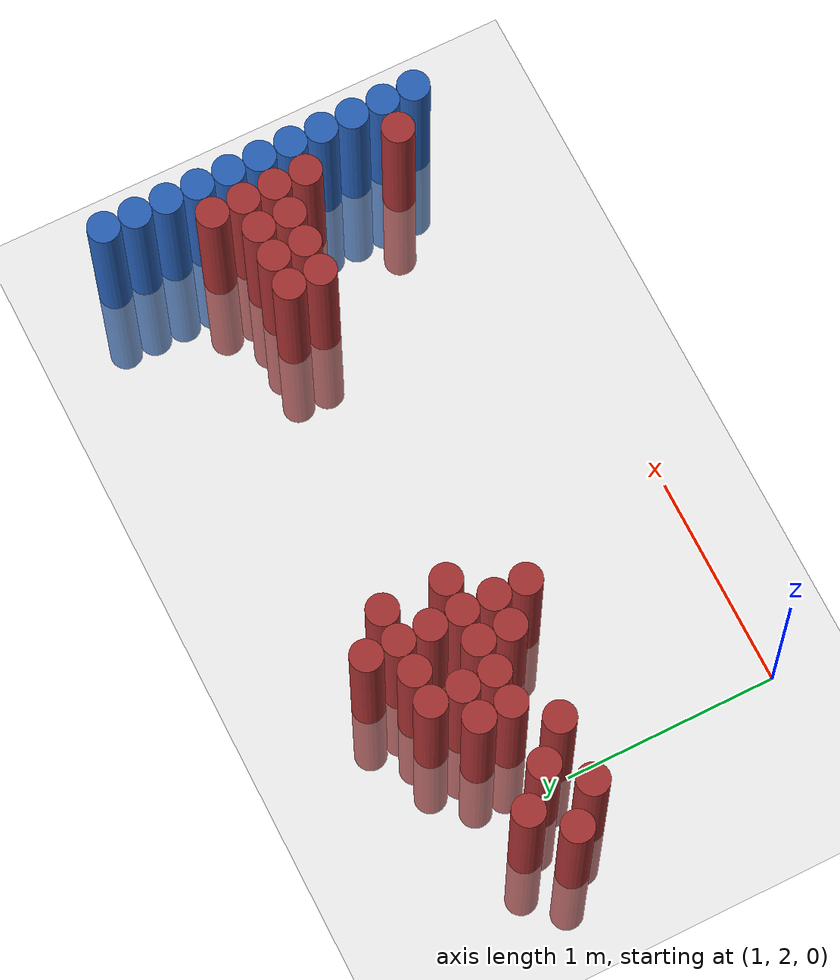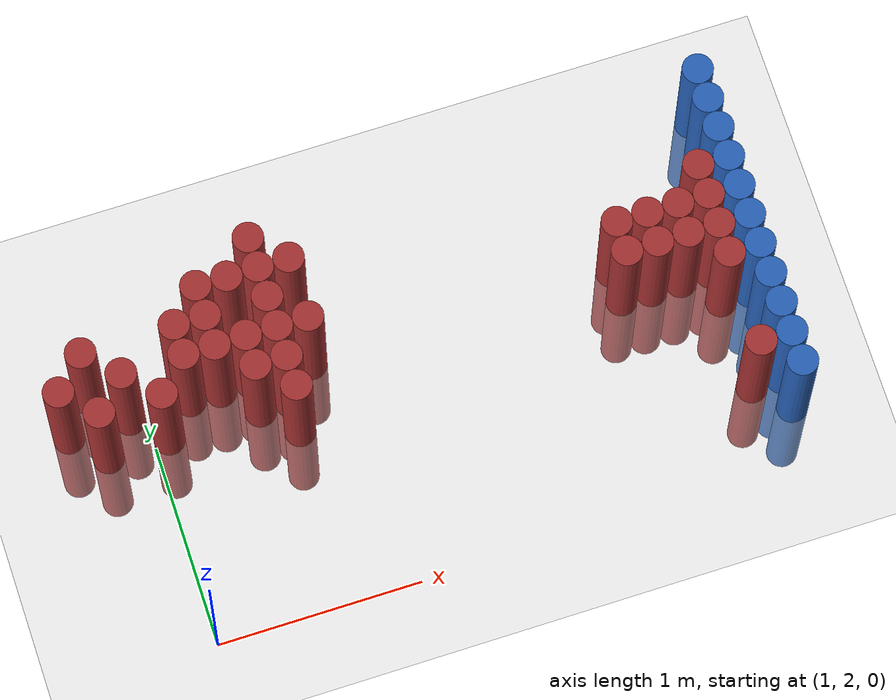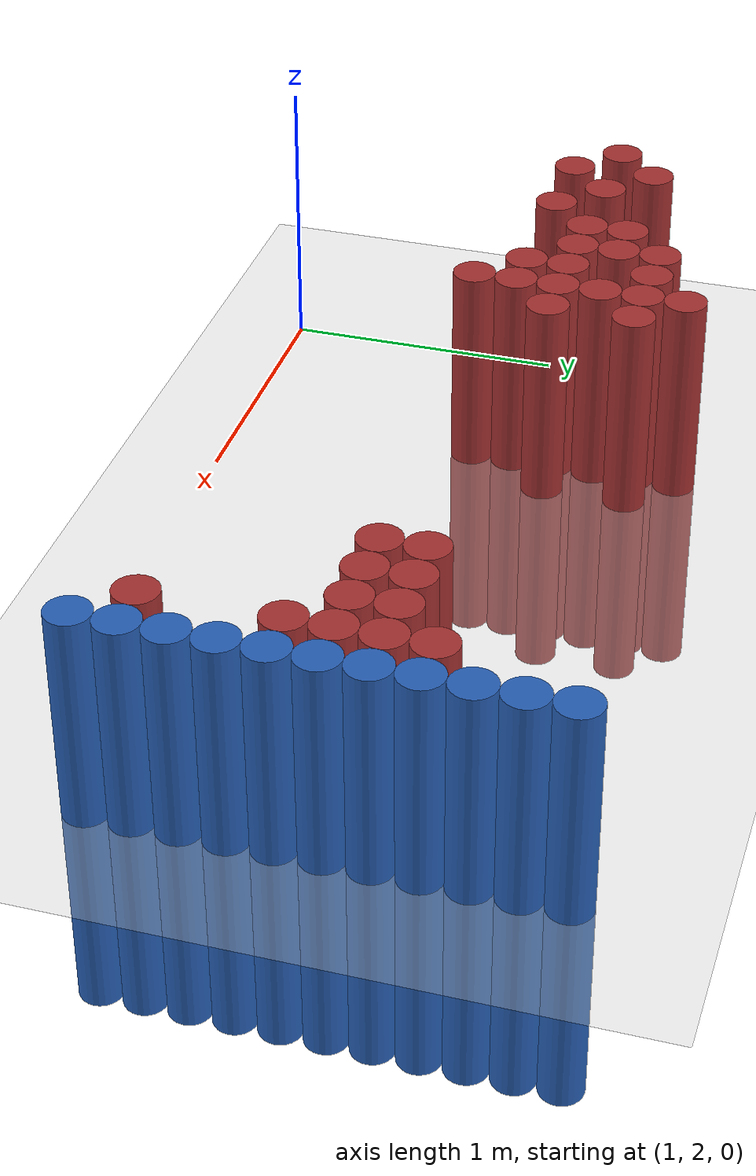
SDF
<sdf version="1.6">
 <world name="default">
  <model name="ground_plane">
   <static>1</static>
   <link name="link">
    <collision name="collision">
     <geometry><plane><normal>0 0 1</normal><size>100 100</size></plane></geometry>
     <surface><friction><ode><mu>100</mu><mu2>50</mu2></ode></friction></surface>
    </collision>
    <visual name="visual">
     <cast_shadows>0</cast_shadows>
     <geometry><plane><normal>0 0 1</normal><size>100 100</size></plane></geometry>
     <material>
      <script><uri>file://media/materials/scripts/gazebo.material</uri><name>Gazebo/Grey</name></script>
     </material>
    </visual>
   </link>
  </model>
  <model name="unit_cylinder_146">
   <static>1</static>
   <pose>3.925000 2.425000 0.000000 0.000000 0.000000 0.000000</pose>
   <link name="link">
    <inertial>
     <mass>1</mass>
     <inertia><ixx>0.145833</ixx><ixy>0</ixy><ixz>0</ixz><iyy>0.145833</iyy><iyz>0</iyz><izz>0.125</izz></inertia>
    </inertial>
    <collision name="collision">
     <geometry><cylinder><radius>0.075000</radius><length>1.5</length></cylinder></geometry>
    </collision>
    <visual name="visual">
     <geometry><cylinder><radius>0.075000</radius><length>1.5</length></cylinder></geometry>
     <material>
      <ambient>0.152000 0.379000 0.720000 1</ambient>
      <diffuse>0.152000 0.379000 0.720000 1</diffuse>
     </material>
     <material>
      <script><name>Gazebo/Grey</name><uri>file://media/materials/scripts/gazebo.material</uri></script>
     </material>
    </visual>
   </link>
  </model>
  <model name="unit_cylinder_148">
   <static>1</static>
   <pose>3.925000 2.575000 0.000000 0.000000 0.000000 0.000000</pose>
   <link name="link">
    <inertial>
     <mass>1</mass>
     <inertia><ixx>0.145833</ixx><ixy>0</ixy><ixz>0</ixz><iyy>0.145833</iyy><iyz>0</iyz><izz>0.125</izz></inertia>
    </inertial>
    <collision name="collision">
     <geometry><cylinder><radius>0.075000</radius><length>1.5</length></cylinder></geometry>
    </collision>
    <visual name="visual">
     <geometry><cylinder><radius>0.075000</radius><length>1.5</length></cylinder></geometry>
     <material>
      <ambient>0.152000 0.379000 0.720000 1</ambient>
      <diffuse>0.152000 0.379000 0.720000 1</diffuse>
     </material>
     <material>
      <script><name>Gazebo/Grey</name><uri>file://media/materials/scripts/gazebo.material</uri></script>
     </material>
    </visual>
   </link>
  </model>
  <model name="unit_cylinder_150">
   <static>1</static>
   <pose>3.925000 2.725000 0.000000 0.000000 0.000000 0.000000</pose>
   <link name="link">
    <inertial>
     <mass>1</mass>
     <inertia><ixx>0.145833</ixx><ixy>0</ixy><ixz>0</ixz><iyy>0.145833</iyy><iyz>0</iyz><izz>0.125</izz></inertia>
    </inertial>
    <collision name="collision">
     <geometry><cylinder><radius>0.075000</radius><length>1.5</length></cylinder></geometry>
    </collision>
    <visual name="visual">
     <geometry><cylinder><radius>0.075000</radius><length>1.5</length></cylinder></geometry>
     <material>
      <ambient>0.152000 0.379000 0.720000 1</ambient>
      <diffuse>0.152000 0.379000 0.720000 1</diffuse>
     </material>
     <material>
      <script><name>Gazebo/Grey</name><uri>file://media/materials/scripts/gazebo.material</uri></script>
     </material>
    </visual>
   </link>
  </model>
  <model name="unit_cylinder_152">
   <static>1</static>
   <pose>3.925000 2.875000 0.000000 0.000000 0.000000 0.000000</pose>
   <link name="link">
    <inertial>
     <mass>1</mass>
     <inertia><ixx>0.145833</ixx><ixy>0</ixy><ixz>0</ixz><iyy>0.145833</iyy><iyz>0</iyz><izz>0.125</izz></inertia>
    </inertial>
    <collision name="collision">
     <geometry><cylinder><radius>0.075000</radius><length>1.5</length></cylinder></geometry>
    </collision>
    <visual name="visual">
     <geometry><cylinder><radius>0.075000</radius><length>1.5</length></cylinder></geometry>
     <material>
      <ambient>0.152000 0.379000 0.720000 1</ambient>
      <diffuse>0.152000 0.379000 0.720000 1</diffuse>
     </material>
     <material>
      <script><name>Gazebo/Grey</name><uri>file://media/materials/scripts/gazebo.material</uri></script>
     </material>
    </visual>
   </link>
  </model>
  <model name="unit_cylinder_154">
   <static>1</static>
   <pose>3.925000 3.025000 0.000000 0.000000 0.000000 0.000000</pose>
   <link name="link">
    <inertial>
     <mass>1</mass>
     <inertia><ixx>0.145833</ixx><ixy>0</ixy><ixz>0</ixz><iyy>0.145833</iyy><iyz>0</iyz><izz>0.125</izz></inertia>
    </inertial>
    <collision name="collision">
     <geometry><cylinder><radius>0.075000</radius><length>1.5</length></cylinder></geometry>
    </collision>
    <visual name="visual">
     <geometry><cylinder><radius>0.075000</radius><length>1.5</length></cylinder></geometry>
     <material>
      <ambient>0.152000 0.379000 0.720000 1</ambient>
      <diffuse>0.152000 0.379000 0.720000 1</diffuse>
     </material>
     <material>
      <script><name>Gazebo/Grey</name><uri>file://media/materials/scripts/gazebo.material</uri></script>
     </material>
    </visual>
   </link>
  </model>
  <model name="unit_cylinder_156">
   <static>1</static>
   <pose>3.925000 3.175000 0.000000 0.000000 0.000000 0.000000</pose>
   <link name="link">
    <inertial>
     <mass>1</mass>
     <inertia><ixx>0.145833</ixx><ixy>0</ixy><ixz>0</ixz><iyy>0.145833</iyy><iyz>0</iyz><izz>0.125</izz></inertia>
    </inertial>
    <collision name="collision">
     <geometry><cylinder><radius>0.075000</radius><length>1.5</length></cylinder></geometry>
    </collision>
    <visual name="visual">
     <geometry><cylinder><radius>0.075000</radius><length>1.5</length></cylinder></geometry>
     <material>
      <ambient>0.152000 0.379000 0.720000 1</ambient>
      <diffuse>0.152000 0.379000 0.720000 1</diffuse>
     </material>
     <material>
      <script><name>Gazebo/Grey</name><uri>file://media/materials/scripts/gazebo.material</uri></script>
     </material>
    </visual>
   </link>
  </model>
  <model name="unit_cylinder_158">
   <static>1</static>
   <pose>3.925000 3.325000 0.000000 0.000000 0.000000 0.000000</pose>
   <link name="link">
    <inertial>
     <mass>1</mass>
     <inertia><ixx>0.145833</ixx><ixy>0</ixy><ixz>0</ixz><iyy>0.145833</iyy><iyz>0</iyz><izz>0.125</izz></inertia>
    </inertial>
    <collision name="collision">
     <geometry><cylinder><radius>0.075000</radius><length>1.5</length></cylinder></geometry>
    </collision>
    <visual name="visual">
     <geometry><cylinder><radius>0.075000</radius><length>1.5</length></cylinder></geometry>
     <material>
      <ambient>0.152000 0.379000 0.720000 1</ambient>
      <diffuse>0.152000 0.379000 0.720000 1</diffuse>
     </material>
     <material>
      <script><name>Gazebo/Grey</name><uri>file://media/materials/scripts/gazebo.material</uri></script>
     </material>
    </visual>
   </link>
  </model>
  <model name="unit_cylinder_160">
   <static>1</static>
   <pose>3.925000 3.475000 0.000000 0.000000 0.000000 0.000000</pose>
   <link name="link">
    <inertial>
     <mass>1</mass>
     <inertia><ixx>0.145833</ixx><ixy>0</ixy><ixz>0</ixz><iyy>0.145833</iyy><iyz>0</iyz><izz>0.125</izz></inertia>
    </inertial>
    <collision name="collision">
     <geometry><cylinder><radius>0.075000</radius><length>1.5</length></cylinder></geometry>
    </collision>
    <visual name="visual">
     <geometry><cylinder><radius>0.075000</radius><length>1.5</length></cylinder></geometry>
     <material>
      <ambient>0.152000 0.379000 0.720000 1</ambient>
      <diffuse>0.152000 0.379000 0.720000 1</diffuse>
     </material>
     <material>
      <script><name>Gazebo/Grey</name><uri>file://media/materials/scripts/gazebo.material</uri></script>
     </material>
    </visual>
   </link>
  </model>
  <model name="unit_cylinder_162">
   <static>1</static>
   <pose>3.925000 3.625000 0.000000 0.000000 0.000000 0.000000</pose>
   <link name="link">
    <inertial>
     <mass>1</mass>
     <inertia><ixx>0.145833</ixx><ixy>0</ixy><ixz>0</ixz><iyy>0.145833</iyy><iyz>0</iyz><izz>0.125</izz></inertia>
    </inertial>
    <collision name="collision">
     <geometry><cylinder><radius>0.075000</radius><length>1.5</length></cylinder></geometry>
    </collision>
    <visual name="visual">
     <geometry><cylinder><radius>0.075000</radius><length>1.5</length></cylinder></geometry>
     <material>
      <ambient>0.152000 0.379000 0.720000 1</ambient>
      <diffuse>0.152000 0.379000 0.720000 1</diffuse>
     </material>
     <material>
      <script><name>Gazebo/Grey</name><uri>file://media/materials/scripts/gazebo.material</uri></script>
     </material>
    </visual>
   </link>
  </model>
  <model name="unit_cylinder_164">
   <static>1</static>
   <pose>3.925000 3.775000 0.000000 0.000000 0.000000 0.000000</pose>
   <link name="link">
    <inertial>
     <mass>1</mass>
     <inertia><ixx>0.145833</ixx><ixy>0</ixy><ixz>0</ixz><iyy>0.145833</iyy><iyz>0</iyz><izz>0.125</izz></inertia>
    </inertial>
    <collision name="collision">
     <geometry><cylinder><radius>0.075000</radius><length>1.5</length></cylinder></geometry>
    </collision>
    <visual name="visual">
     <geometry><cylinder><radius>0.075000</radius><length>1.5</length></cylinder></geometry>
     <material>
      <ambient>0.152000 0.379000 0.720000 1</ambient>
      <diffuse>0.152000 0.379000 0.720000 1</diffuse>
     </material>
     <material>
      <script><name>Gazebo/Grey</name><uri>file://media/materials/scripts/gazebo.material</uri></script>
     </material>
    </visual>
   </link>
  </model>
  <model name="unit_cylinder_350">
   <static>1</static>
   <pose>0.625000 3.175000 0.000000 0.000000 0.000000 0.000000</pose>
   <link name="link">
    <inertial>
     <mass>1</mass>
     <inertia><ixx>0.145833</ixx><ixy>0</ixy><ixz>0</ixz><iyy>0.145833</iyy><iyz>0</iyz><izz>0.125</izz></inertia>
    </inertial>
    <collision name="collision">
     <geometry><cylinder><radius>0.075000</radius><length>1.5</length></cylinder></geometry>
    </collision>
    <visual name="visual">
     <geometry><cylinder><radius>0.075000</radius><length>1.5</length></cylinder></geometry>
     <material>
      <ambient>0.648000 0.192000 0.192000 1</ambient>
      <diffuse>0.648000 0.192000 0.192000 1</diffuse>
     </material>
     <material>
      <script><name>Gazebo/Grey</name><uri>file://media/materials/scripts/gazebo.material</uri></script>
     </material>
    </visual>
   </link>
  </model>
  <model name="unit_cylinder_353">
   <static>1</static>
   <pose>0.775000 3.025000 0.000000 0.000000 0.000000 0.000000</pose>
   <link name="link">
    <inertial>
     <mass>1</mass>
     <inertia><ixx>0.145833</ixx><ixy>0</ixy><ixz>0</ixz><iyy>0.145833</iyy><iyz>0</iyz><izz>0.125</izz></inertia>
    </inertial>
    <collision name="collision">
     <geometry><cylinder><radius>0.075000</radius><length>1.5</length></cylinder></geometry>
    </collision>
    <visual name="visual">
     <geometry><cylinder><radius>0.075000</radius><length>1.5</length></cylinder></geometry>
     <material>
      <ambient>0.648000 0.192000 0.192000 1</ambient>
      <diffuse>0.648000 0.192000 0.192000 1</diffuse>
     </material>
     <material>
      <script><name>Gazebo/Grey</name><uri>file://media/materials/scripts/gazebo.material</uri></script>
     </material>
    </visual>
   </link>
  </model>
  <model name="unit_cylinder_354">
   <static>1</static>
   <pose>0.775000 3.325000 0.000000 0.000000 0.000000 0.000000</pose>
   <link name="link">
    <inertial>
     <mass>1</mass>
     <inertia><ixx>0.145833</ixx><ixy>0</ixy><ixz>0</ixz><iyy>0.145833</iyy><iyz>0</iyz><izz>0.125</izz></inertia>
    </inertial>
    <collision name="collision">
     <geometry><cylinder><radius>0.075000</radius><length>1.5</length></cylinder></geometry>
    </collision>
    <visual name="visual">
     <geometry><cylinder><radius>0.075000</radius><length>1.5</length></cylinder></geometry>
     <material>
      <ambient>0.648000 0.192000 0.192000 1</ambient>
      <diffuse>0.648000 0.192000 0.192000 1</diffuse>
     </material>
     <material>
      <script><name>Gazebo/Grey</name><uri>file://media/materials/scripts/gazebo.material</uri></script>
     </material>
    </visual>
   </link>
  </model>
  <model name="unit_cylinder_360">
   <static>1</static>
   <pose>0.925000 3.175000 0.000000 0.000000 0.000000 0.000000</pose>
   <link name="link">
    <inertial>
     <mass>1</mass>
     <inertia><ixx>0.145833</ixx><ixy>0</ixy><ixz>0</ixz><iyy>0.145833</iyy><iyz>0</iyz><izz>0.125</izz></inertia>
    </inertial>
    <collision name="collision">
     <geometry><cylinder><radius>0.075000</radius><length>1.5</length></cylinder></geometry>
    </collision>
    <visual name="visual">
     <geometry><cylinder><radius>0.075000</radius><length>1.5</length></cylinder></geometry>
     <material>
      <ambient>0.648000 0.192000 0.192000 1</ambient>
      <diffuse>0.648000 0.192000 0.192000 1</diffuse>
     </material>
     <material>
      <script><name>Gazebo/Grey</name><uri>file://media/materials/scripts/gazebo.material</uri></script>
     </material>
    </visual>
   </link>
  </model>
  <model name="unit_cylinder_367">
   <static>1</static>
   <pose>1.075000 3.025000 0.000000 0.000000 0.000000 0.000000</pose>
   <link name="link">
    <inertial>
     <mass>1</mass>
     <inertia><ixx>0.145833</ixx><ixy>0</ixy><ixz>0</ixz><iyy>0.145833</iyy><iyz>0</iyz><izz>0.125</izz></inertia>
    </inertial>
    <collision name="collision">
     <geometry><cylinder><radius>0.075000</radius><length>1.5</length></cylinder></geometry>
    </collision>
    <visual name="visual">
     <geometry><cylinder><radius>0.075000</radius><length>1.5</length></cylinder></geometry>
     <material>
      <ambient>0.648000 0.192000 0.192000 1</ambient>
      <diffuse>0.648000 0.192000 0.192000 1</diffuse>
     </material>
     <material>
      <script><name>Gazebo/Grey</name><uri>file://media/materials/scripts/gazebo.material</uri></script>
     </material>
    </visual>
   </link>
  </model>
  <model name="unit_cylinder_371">
   <static>1</static>
   <pose>1.225000 3.175000 0.000000 0.000000 0.000000 0.000000</pose>
   <link name="link">
    <inertial>
     <mass>1</mass>
     <inertia><ixx>0.145833</ixx><ixy>0</ixy><ixz>0</ixz><iyy>0.145833</iyy><iyz>0</iyz><izz>0.125</izz></inertia>
    </inertial>
    <collision name="collision">
     <geometry><cylinder><radius>0.075000</radius><length>1.5</length></cylinder></geometry>
    </collision>
    <visual name="visual">
     <geometry><cylinder><radius>0.075000</radius><length>1.5</length></cylinder></geometry>
     <material>
      <ambient>0.648000 0.192000 0.192000 1</ambient>
      <diffuse>0.648000 0.192000 0.192000 1</diffuse>
     </material>
     <material>
      <script><name>Gazebo/Grey</name><uri>file://media/materials/scripts/gazebo.material</uri></script>
     </material>
    </visual>
   </link>
  </model>
  <model name="unit_cylinder_372">
   <static>1</static>
   <pose>1.225000 3.325000 0.000000 0.000000 0.000000 0.000000</pose>
   <link name="link">
    <inertial>
     <mass>1</mass>
     <inertia><ixx>0.145833</ixx><ixy>0</ixy><ixz>0</ixz><iyy>0.145833</iyy><iyz>0</iyz><izz>0.125</izz></inertia>
    </inertial>
    <collision name="collision">
     <geometry><cylinder><radius>0.075000</radius><length>1.5</length></cylinder></geometry>
    </collision>
    <visual name="visual">
     <geometry><cylinder><radius>0.075000</radius><length>1.5</length></cylinder></geometry>
     <material>
      <ambient>0.648000 0.192000 0.192000 1</ambient>
      <diffuse>0.648000 0.192000 0.192000 1</diffuse>
     </material>
     <material>
      <script><name>Gazebo/Grey</name><uri>file://media/materials/scripts/gazebo.material</uri></script>
     </material>
    </visual>
   </link>
  </model>
  <model name="unit_cylinder_377">
   <static>1</static>
   <pose>1.375000 3.175000 0.000000 0.000000 0.000000 0.000000</pose>
   <link name="link">
    <inertial>
     <mass>1</mass>
     <inertia><ixx>0.145833</ixx><ixy>0</ixy><ixz>0</ixz><iyy>0.145833</iyy><iyz>0</iyz><izz>0.125</izz></inertia>
    </inertial>
    <collision name="collision">
     <geometry><cylinder><radius>0.075000</radius><length>1.5</length></cylinder></geometry>
    </collision>
    <visual name="visual">
     <geometry><cylinder><radius>0.075000</radius><length>1.5</length></cylinder></geometry>
     <material>
      <ambient>0.648000 0.192000 0.192000 1</ambient>
      <diffuse>0.648000 0.192000 0.192000 1</diffuse>
     </material>
     <material>
      <script><name>Gazebo/Grey</name><uri>file://media/materials/scripts/gazebo.material</uri></script>
     </material>
    </visual>
   </link>
  </model>
  <model name="unit_cylinder_378">
   <static>1</static>
   <pose>1.375000 3.325000 0.000000 0.000000 0.000000 0.000000</pose>
   <link name="link">
    <inertial>
     <mass>1</mass>
     <inertia><ixx>0.145833</ixx><ixy>0</ixy><ixz>0</ixz><iyy>0.145833</iyy><iyz>0</iyz><izz>0.125</izz></inertia>
    </inertial>
    <collision name="collision">
     <geometry><cylinder><radius>0.075000</radius><length>1.5</length></cylinder></geometry>
    </collision>
    <visual name="visual">
     <geometry><cylinder><radius>0.075000</radius><length>1.5</length></cylinder></geometry>
     <material>
      <ambient>0.648000 0.192000 0.192000 1</ambient>
      <diffuse>0.648000 0.192000 0.192000 1</diffuse>
     </material>
     <material>
      <script><name>Gazebo/Grey</name><uri>file://media/materials/scripts/gazebo.material</uri></script>
     </material>
    </visual>
   </link>
  </model>
  <model name="unit_cylinder_379">
   <static>1</static>
   <pose>1.375000 3.475000 0.000000 0.000000 0.000000 0.000000</pose>
   <link name="link">
    <inertial>
     <mass>1</mass>
     <inertia><ixx>0.145833</ixx><ixy>0</ixy><ixz>0</ixz><iyy>0.145833</iyy><iyz>0</iyz><izz>0.125</izz></inertia>
    </inertial>
    <collision name="collision">
     <geometry><cylinder><radius>0.075000</radius><length>1.5</length></cylinder></geometry>
    </collision>
    <visual name="visual">
     <geometry><cylinder><radius>0.075000</radius><length>1.5</length></cylinder></geometry>
     <material>
      <ambient>0.648000 0.192000 0.192000 1</ambient>
      <diffuse>0.648000 0.192000 0.192000 1</diffuse>
     </material>
     <material>
      <script><name>Gazebo/Grey</name><uri>file://media/materials/scripts/gazebo.material</uri></script>
     </material>
    </visual>
   </link>
  </model>
  <model name="unit_cylinder_384">
   <static>1</static>
   <pose>1.525000 3.025000 0.000000 0.000000 0.000000 0.000000</pose>
   <link name="link">
    <inertial>
     <mass>1</mass>
     <inertia><ixx>0.145833</ixx><ixy>0</ixy><ixz>0</ixz><iyy>0.145833</iyy><iyz>0</iyz><izz>0.125</izz></inertia>
    </inertial>
    <collision name="collision">
     <geometry><cylinder><radius>0.075000</radius><length>1.5</length></cylinder></geometry>
    </collision>
    <visual name="visual">
     <geometry><cylinder><radius>0.075000</radius><length>1.5</length></cylinder></geometry>
     <material>
      <ambient>0.648000 0.192000 0.192000 1</ambient>
      <diffuse>0.648000 0.192000 0.192000 1</diffuse>
     </material>
     <material>
      <script><name>Gazebo/Grey</name><uri>file://media/materials/scripts/gazebo.material</uri></script>
     </material>
    </visual>
   </link>
  </model>
  <model name="unit_cylinder_385">
   <static>1</static>
   <pose>1.525000 3.175000 0.000000 0.000000 0.000000 0.000000</pose>
   <link name="link">
    <inertial>
     <mass>1</mass>
     <inertia><ixx>0.145833</ixx><ixy>0</ixy><ixz>0</ixz><iyy>0.145833</iyy><iyz>0</iyz><izz>0.125</izz></inertia>
    </inertial>
    <collision name="collision">
     <geometry><cylinder><radius>0.075000</radius><length>1.5</length></cylinder></geometry>
    </collision>
    <visual name="visual">
     <geometry><cylinder><radius>0.075000</radius><length>1.5</length></cylinder></geometry>
     <material>
      <ambient>0.648000 0.192000 0.192000 1</ambient>
      <diffuse>0.648000 0.192000 0.192000 1</diffuse>
     </material>
     <material>
      <script><name>Gazebo/Grey</name><uri>file://media/materials/scripts/gazebo.material</uri></script>
     </material>
    </visual>
   </link>
  </model>
  <model name="unit_cylinder_386">
   <static>1</static>
   <pose>1.525000 3.475000 0.000000 0.000000 0.000000 0.000000</pose>
   <link name="link">
    <inertial>
     <mass>1</mass>
     <inertia><ixx>0.145833</ixx><ixy>0</ixy><ixz>0</ixz><iyy>0.145833</iyy><iyz>0</iyz><izz>0.125</izz></inertia>
    </inertial>
    <collision name="collision">
     <geometry><cylinder><radius>0.075000</radius><length>1.5</length></cylinder></geometry>
    </collision>
    <visual name="visual">
     <geometry><cylinder><radius>0.075000</radius><length>1.5</length></cylinder></geometry>
     <material>
      <ambient>0.648000 0.192000 0.192000 1</ambient>
      <diffuse>0.648000 0.192000 0.192000 1</diffuse>
     </material>
     <material>
      <script><name>Gazebo/Grey</name><uri>file://media/materials/scripts/gazebo.material</uri></script>
     </material>
    </visual>
   </link>
  </model>
  <model name="unit_cylinder_391">
   <static>1</static>
   <pose>1.675000 2.875000 0.000000 0.000000 0.000000 0.000000</pose>
   <link name="link">
    <inertial>
     <mass>1</mass>
     <inertia><ixx>0.145833</ixx><ixy>0</ixy><ixz>0</ixz><iyy>0.145833</iyy><iyz>0</iyz><izz>0.125</izz></inertia>
    </inertial>
    <collision name="collision">
     <geometry><cylinder><radius>0.075000</radius><length>1.5</length></cylinder></geometry>
    </collision>
    <visual name="visual">
     <geometry><cylinder><radius>0.075000</radius><length>1.5</length></cylinder></geometry>
     <material>
      <ambient>0.648000 0.192000 0.192000 1</ambient>
      <diffuse>0.648000 0.192000 0.192000 1</diffuse>
     </material>
     <material>
      <script><name>Gazebo/Grey</name><uri>file://media/materials/scripts/gazebo.material</uri></script>
     </material>
    </visual>
   </link>
  </model>
  <model name="unit_cylinder_392">
   <static>1</static>
   <pose>1.675000 3.025000 0.000000 0.000000 0.000000 0.000000</pose>
   <link name="link">
    <inertial>
     <mass>1</mass>
     <inertia><ixx>0.145833</ixx><ixy>0</ixy><ixz>0</ixz><iyy>0.145833</iyy><iyz>0</iyz><izz>0.125</izz></inertia>
    </inertial>
    <collision name="collision">
     <geometry><cylinder><radius>0.075000</radius><length>1.5</length></cylinder></geometry>
    </collision>
    <visual name="visual">
     <geometry><cylinder><radius>0.075000</radius><length>1.5</length></cylinder></geometry>
     <material>
      <ambient>0.648000 0.192000 0.192000 1</ambient>
      <diffuse>0.648000 0.192000 0.192000 1</diffuse>
     </material>
     <material>
      <script><name>Gazebo/Grey</name><uri>file://media/materials/scripts/gazebo.material</uri></script>
     </material>
    </visual>
   </link>
  </model>
  <model name="unit_cylinder_393">
   <static>1</static>
   <pose>1.675000 3.175000 0.000000 0.000000 0.000000 0.000000</pose>
   <link name="link">
    <inertial>
     <mass>1</mass>
     <inertia><ixx>0.145833</ixx><ixy>0</ixy><ixz>0</ixz><iyy>0.145833</iyy><iyz>0</iyz><izz>0.125</izz></inertia>
    </inertial>
    <collision name="collision">
     <geometry><cylinder><radius>0.075000</radius><length>1.5</length></cylinder></geometry>
    </collision>
    <visual name="visual">
     <geometry><cylinder><radius>0.075000</radius><length>1.5</length></cylinder></geometry>
     <material>
      <ambient>0.648000 0.192000 0.192000 1</ambient>
      <diffuse>0.648000 0.192000 0.192000 1</diffuse>
     </material>
     <material>
      <script><name>Gazebo/Grey</name><uri>file://media/materials/scripts/gazebo.material</uri></script>
     </material>
    </visual>
   </link>
  </model>
  <model name="unit_cylinder_394">
   <static>1</static>
   <pose>1.675000 3.325000 0.000000 0.000000 0.000000 0.000000</pose>
   <link name="link">
    <inertial>
     <mass>1</mass>
     <inertia><ixx>0.145833</ixx><ixy>0</ixy><ixz>0</ixz><iyy>0.145833</iyy><iyz>0</iyz><izz>0.125</izz></inertia>
    </inertial>
    <collision name="collision">
     <geometry><cylinder><radius>0.075000</radius><length>1.5</length></cylinder></geometry>
    </collision>
    <visual name="visual">
     <geometry><cylinder><radius>0.075000</radius><length>1.5</length></cylinder></geometry>
     <material>
      <ambient>0.648000 0.192000 0.192000 1</ambient>
      <diffuse>0.648000 0.192000 0.192000 1</diffuse>
     </material>
     <material>
      <script><name>Gazebo/Grey</name><uri>file://media/materials/scripts/gazebo.material</uri></script>
     </material>
    </visual>
   </link>
  </model>
  <model name="unit_cylinder_395">
   <static>1</static>
   <pose>1.675000 3.475000 0.000000 0.000000 0.000000 0.000000</pose>
   <link name="link">
    <inertial>
     <mass>1</mass>
     <inertia><ixx>0.145833</ixx><ixy>0</ixy><ixz>0</ixz><iyy>0.145833</iyy><iyz>0</iyz><izz>0.125</izz></inertia>
    </inertial>
    <collision name="collision">
     <geometry><cylinder><radius>0.075000</radius><length>1.5</length></cylinder></geometry>
    </collision>
    <visual name="visual">
     <geometry><cylinder><radius>0.075000</radius><length>1.5</length></cylinder></geometry>
     <material>
      <ambient>0.648000 0.192000 0.192000 1</ambient>
      <diffuse>0.648000 0.192000 0.192000 1</diffuse>
     </material>
     <material>
      <script><name>Gazebo/Grey</name><uri>file://media/materials/scripts/gazebo.material</uri></script>
     </material>
    </visual>
   </link>
  </model>
  <model name="unit_cylinder_396">
   <static>1</static>
   <pose>1.675000 3.625000 0.000000 0.000000 0.000000 0.000000</pose>
   <link name="link">
    <inertial>
     <mass>1</mass>
     <inertia><ixx>0.145833</ixx><ixy>0</ixy><ixz>0</ixz><iyy>0.145833</iyy><iyz>0</iyz><izz>0.125</izz></inertia>
    </inertial>
    <collision name="collision">
     <geometry><cylinder><radius>0.075000</radius><length>1.5</length></cylinder></geometry>
    </collision>
    <visual name="visual">
     <geometry><cylinder><radius>0.075000</radius><length>1.5</length></cylinder></geometry>
     <material>
      <ambient>0.648000 0.192000 0.192000 1</ambient>
      <diffuse>0.648000 0.192000 0.192000 1</diffuse>
     </material>
     <material>
      <script><name>Gazebo/Grey</name><uri>file://media/materials/scripts/gazebo.material</uri></script>
     </material>
    </visual>
   </link>
  </model>
  <model name="unit_cylinder_401">
   <static>1</static>
   <pose>1.825000 3.175000 0.000000 0.000000 0.000000 0.000000</pose>
   <link name="link">
    <inertial>
     <mass>1</mass>
     <inertia><ixx>0.145833</ixx><ixy>0</ixy><ixz>0</ixz><iyy>0.145833</iyy><iyz>0</iyz><izz>0.125</izz></inertia>
    </inertial>
    <collision name="collision">
     <geometry><cylinder><radius>0.075000</radius><length>1.5</length></cylinder></geometry>
    </collision>
    <visual name="visual">
     <geometry><cylinder><radius>0.075000</radius><length>1.5</length></cylinder></geometry>
     <material>
      <ambient>0.648000 0.192000 0.192000 1</ambient>
      <diffuse>0.648000 0.192000 0.192000 1</diffuse>
     </material>
     <material>
      <script><name>Gazebo/Grey</name><uri>file://media/materials/scripts/gazebo.material</uri></script>
     </material>
    </visual>
   </link>
  </model>
  <model name="unit_cylinder_402">
   <static>1</static>
   <pose>1.825000 3.475000 0.000000 0.000000 0.000000 0.000000</pose>
   <link name="link">
    <inertial>
     <mass>1</mass>
     <inertia><ixx>0.145833</ixx><ixy>0</ixy><ixz>0</ixz><iyy>0.145833</iyy><iyz>0</iyz><izz>0.125</izz></inertia>
    </inertial>
    <collision name="collision">
     <geometry><cylinder><radius>0.075000</radius><length>1.5</length></cylinder></geometry>
    </collision>
    <visual name="visual">
     <geometry><cylinder><radius>0.075000</radius><length>1.5</length></cylinder></geometry>
     <material>
      <ambient>0.648000 0.192000 0.192000 1</ambient>
      <diffuse>0.648000 0.192000 0.192000 1</diffuse>
     </material>
     <material>
      <script><name>Gazebo/Grey</name><uri>file://media/materials/scripts/gazebo.material</uri></script>
     </material>
    </visual>
   </link>
  </model>
  <model name="unit_cylinder_444">
   <static>1</static>
   <pose>3.325000 3.025000 0.000000 0.000000 0.000000 0.000000</pose>
   <link name="link">
    <inertial>
     <mass>1</mass>
     <inertia><ixx>0.145833</ixx><ixy>0</ixy><ixz>0</ixz><iyy>0.145833</iyy><iyz>0</iyz><izz>0.125</izz></inertia>
    </inertial>
    <collision name="collision">
     <geometry><cylinder><radius>0.075000</radius><length>1.5</length></cylinder></geometry>
    </collision>
    <visual name="visual">
     <geometry><cylinder><radius>0.075000</radius><length>1.5</length></cylinder></geometry>
     <material>
      <ambient>0.648000 0.192000 0.192000 1</ambient>
      <diffuse>0.648000 0.192000 0.192000 1</diffuse>
     </material>
     <material>
      <script><name>Gazebo/Grey</name><uri>file://media/materials/scripts/gazebo.material</uri></script>
     </material>
    </visual>
   </link>
  </model>
  <model name="unit_cylinder_445">
   <static>1</static>
   <pose>3.325000 3.175000 0.000000 0.000000 0.000000 0.000000</pose>
   <link name="link">
    <inertial>
     <mass>1</mass>
     <inertia><ixx>0.145833</ixx><ixy>0</ixy><ixz>0</ixz><iyy>0.145833</iyy><iyz>0</iyz><izz>0.125</izz></inertia>
    </inertial>
    <collision name="collision">
     <geometry><cylinder><radius>0.075000</radius><length>1.5</length></cylinder></geometry>
    </collision>
    <visual name="visual">
     <geometry><cylinder><radius>0.075000</radius><length>1.5</length></cylinder></geometry>
     <material>
      <ambient>0.648000 0.192000 0.192000 1</ambient>
      <diffuse>0.648000 0.192000 0.192000 1</diffuse>
     </material>
     <material>
      <script><name>Gazebo/Grey</name><uri>file://media/materials/scripts/gazebo.material</uri></script>
     </material>
    </visual>
   </link>
  </model>
  <model name="unit_cylinder_447">
   <static>1</static>
   <pose>3.475000 3.025000 0.000000 0.000000 0.000000 0.000000</pose>
   <link name="link">
    <inertial>
     <mass>1</mass>
     <inertia><ixx>0.145833</ixx><ixy>0</ixy><ixz>0</ixz><iyy>0.145833</iyy><iyz>0</iyz><izz>0.125</izz></inertia>
    </inertial>
    <collision name="collision">
     <geometry><cylinder><radius>0.075000</radius><length>1.5</length></cylinder></geometry>
    </collision>
    <visual name="visual">
     <geometry><cylinder><radius>0.075000</radius><length>1.5</length></cylinder></geometry>
     <material>
      <ambient>0.648000 0.192000 0.192000 1</ambient>
      <diffuse>0.648000 0.192000 0.192000 1</diffuse>
     </material>
     <material>
      <script><name>Gazebo/Grey</name><uri>file://media/materials/scripts/gazebo.material</uri></script>
     </material>
    </visual>
   </link>
  </model>
  <model name="unit_cylinder_448">
   <static>1</static>
   <pose>3.475000 3.175000 0.000000 0.000000 0.000000 0.000000</pose>
   <link name="link">
    <inertial>
     <mass>1</mass>
     <inertia><ixx>0.145833</ixx><ixy>0</ixy><ixz>0</ixz><iyy>0.145833</iyy><iyz>0</iyz><izz>0.125</izz></inertia>
    </inertial>
    <collision name="collision">
     <geometry><cylinder><radius>0.075000</radius><length>1.5</length></cylinder></geometry>
    </collision>
    <visual name="visual">
     <geometry><cylinder><radius>0.075000</radius><length>1.5</length></cylinder></geometry>
     <material>
      <ambient>0.648000 0.192000 0.192000 1</ambient>
      <diffuse>0.648000 0.192000 0.192000 1</diffuse>
     </material>
     <material>
      <script><name>Gazebo/Grey</name><uri>file://media/materials/scripts/gazebo.material</uri></script>
     </material>
    </visual>
   </link>
  </model>
  <model name="unit_cylinder_453">
   <static>1</static>
   <pose>3.625000 3.025000 0.000000 0.000000 0.000000 0.000000</pose>
   <link name="link">
    <inertial>
     <mass>1</mass>
     <inertia><ixx>0.145833</ixx><ixy>0</ixy><ixz>0</ixz><iyy>0.145833</iyy><iyz>0</iyz><izz>0.125</izz></inertia>
    </inertial>
    <collision name="collision">
     <geometry><cylinder><radius>0.075000</radius><length>1.5</length></cylinder></geometry>
    </collision>
    <visual name="visual">
     <geometry><cylinder><radius>0.075000</radius><length>1.5</length></cylinder></geometry>
     <material>
      <ambient>0.648000 0.192000 0.192000 1</ambient>
      <diffuse>0.648000 0.192000 0.192000 1</diffuse>
     </material>
     <material>
      <script><name>Gazebo/Grey</name><uri>file://media/materials/scripts/gazebo.material</uri></script>
     </material>
    </visual>
   </link>
  </model>
  <model name="unit_cylinder_454">
   <static>1</static>
   <pose>3.625000 3.175000 0.000000 0.000000 0.000000 0.000000</pose>
   <link name="link">
    <inertial>
     <mass>1</mass>
     <inertia><ixx>0.145833</ixx><ixy>0</ixy><ixz>0</ixz><iyy>0.145833</iyy><iyz>0</iyz><izz>0.125</izz></inertia>
    </inertial>
    <collision name="collision">
     <geometry><cylinder><radius>0.075000</radius><length>1.5</length></cylinder></geometry>
    </collision>
    <visual name="visual">
     <geometry><cylinder><radius>0.075000</radius><length>1.5</length></cylinder></geometry>
     <material>
      <ambient>0.648000 0.192000 0.192000 1</ambient>
      <diffuse>0.648000 0.192000 0.192000 1</diffuse>
     </material>
     <material>
      <script><name>Gazebo/Grey</name><uri>file://media/materials/scripts/gazebo.material</uri></script>
     </material>
    </visual>
   </link>
  </model>
  <model name="unit_cylinder_472">
   <static>1</static>
   <pose>3.775000 2.425000 0.000000 0.000000 0.000000 0.000000</pose>
   <link name="link">
    <inertial>
     <mass>1</mass>
     <inertia><ixx>0.145833</ixx><ixy>0</ixy><ixz>0</ixz><iyy>0.145833</iyy><iyz>0</iyz><izz>0.125</izz></inertia>
    </inertial>
    <collision name="collision">
     <geometry><cylinder><radius>0.075000</radius><length>1.5</length></cylinder></geometry>
    </collision>
    <visual name="visual">
     <geometry><cylinder><radius>0.075000</radius><length>1.5</length></cylinder></geometry>
     <material>
      <ambient>0.648000 0.192000 0.192000 1</ambient>
      <diffuse>0.648000 0.192000 0.192000 1</diffuse>
     </material>
     <material>
      <script><name>Gazebo/Grey</name><uri>file://media/materials/scripts/gazebo.material</uri></script>
     </material>
    </visual>
   </link>
  </model>
  <model name="unit_cylinder_473">
   <static>1</static>
   <pose>3.775000 2.875000 0.000000 0.000000 0.000000 0.000000</pose>
   <link name="link">
    <inertial>
     <mass>1</mass>
     <inertia><ixx>0.145833</ixx><ixy>0</ixy><ixz>0</ixz><iyy>0.145833</iyy><iyz>0</iyz><izz>0.125</izz></inertia>
    </inertial>
    <collision name="collision">
     <geometry><cylinder><radius>0.075000</radius><length>1.5</length></cylinder></geometry>
    </collision>
    <visual name="visual">
     <geometry><cylinder><radius>0.075000</radius><length>1.5</length></cylinder></geometry>
     <material>
      <ambient>0.648000 0.192000 0.192000 1</ambient>
      <diffuse>0.648000 0.192000 0.192000 1</diffuse>
     </material>
     <material>
      <script><name>Gazebo/Grey</name><uri>file://media/materials/scripts/gazebo.material</uri></script>
     </material>
    </visual>
   </link>
  </model>
  <model name="unit_cylinder_474">
   <static>1</static>
   <pose>3.775000 3.025000 0.000000 0.000000 0.000000 0.000000</pose>
   <link name="link">
    <inertial>
     <mass>1</mass>
     <inertia><ixx>0.145833</ixx><ixy>0</ixy><ixz>0</ixz><iyy>0.145833</iyy><iyz>0</iyz><izz>0.125</izz></inertia>
    </inertial>
    <collision name="collision">
     <geometry><cylinder><radius>0.075000</radius><length>1.5</length></cylinder></geometry>
    </collision>
    <visual name="visual">
     <geometry><cylinder><radius>0.075000</radius><length>1.5</length></cylinder></geometry>
     <material>
      <ambient>0.648000 0.192000 0.192000 1</ambient>
      <diffuse>0.648000 0.192000 0.192000 1</diffuse>
     </material>
     <material>
      <script><name>Gazebo/Grey</name><uri>file://media/materials/scripts/gazebo.material</uri></script>
     </material>
    </visual>
   </link>
  </model>
  <model name="unit_cylinder_475">
   <static>1</static>
   <pose>3.775000 3.175000 0.000000 0.000000 0.000000 0.000000</pose>
   <link name="link">
    <inertial>
     <mass>1</mass>
     <inertia><ixx>0.145833</ixx><ixy>0</ixy><ixz>0</ixz><iyy>0.145833</iyy><iyz>0</iyz><izz>0.125</izz></inertia>
    </inertial>
    <collision name="collision">
     <geometry><cylinder><radius>0.075000</radius><length>1.5</length></cylinder></geometry>
    </collision>
    <visual name="visual">
     <geometry><cylinder><radius>0.075000</radius><length>1.5</length></cylinder></geometry>
     <material>
      <ambient>0.648000 0.192000 0.192000 1</ambient>
      <diffuse>0.648000 0.192000 0.192000 1</diffuse>
     </material>
     <material>
      <script><name>Gazebo/Grey</name><uri>file://media/materials/scripts/gazebo.material</uri></script>
     </material>
    </visual>
   </link>
  </model>
  <model name="unit_cylinder_476">
   <static>1</static>
   <pose>3.775000 3.325000 0.000000 0.000000 0.000000 0.000000</pose>
   <link name="link">
    <inertial>
     <mass>1</mass>
     <inertia><ixx>0.145833</ixx><ixy>0</ixy><ixz>0</ixz><iyy>0.145833</iyy><iyz>0</iyz><izz>0.125</izz></inertia>
    </inertial>
    <collision name="collision">
     <geometry><cylinder><radius>0.075000</radius><length>1.5</length></cylinder></geometry>
    </collision>
    <visual name="visual">
     <geometry><cylinder><radius>0.075000</radius><length>1.5</length></cylinder></geometry>
     <material>
      <ambient>0.648000 0.192000 0.192000 1</ambient>
      <diffuse>0.648000 0.192000 0.192000 1</diffuse>
     </material>
     <material>
      <script><name>Gazebo/Grey</name><uri>file://media/materials/scripts/gazebo.material</uri></script>
     </material>
    </visual>
   </link>
  </model>
  <model name="unit_cylinder_513">
   <static>1</static>
   <pose>3.925000 2.275000 0.000000 0.000000 0.000000 0.000000</pose>
   <link name="link">
    <inertial>
     <mass>1</mass>
     <inertia><ixx>0.145833</ixx><ixy>0</ixy><ixz>0</ixz><iyy>0.145833</iyy><iyz>0</iyz><izz>0.125</izz></inertia>
    </inertial>
    <collision name="collision">
     <geometry><cylinder><radius>0.075000</radius><length>1.5</length></cylinder></geometry>
    </collision>
    <visual name="visual">
     <geometry><cylinder><radius>0.075000</radius><length>1.5</length></cylinder></geometry>
     <material>
      <ambient>0.152000 0.379000 0.720000 1</ambient>
      <diffuse>0.152000 0.379000 0.720000 1</diffuse>
     </material>
     <material>
      <script><name>Gazebo/Grey</name><uri>file://media/materials/scripts/gazebo.material</uri></script>
     </material>
    </visual>
   </link>
  </model>
  <model name="unit_cylinder_514">
   <static>1</static>
   <pose>3.925000 2.425000 0.000000 0.000000 0.000000 0.000000</pose>
   <link name="link">
    <inertial>
     <mass>1</mass>
     <inertia><ixx>0.145833</ixx><ixy>0</ixy><ixz>0</ixz><iyy>0.145833</iyy><iyz>0</iyz><izz>0.125</izz></inertia>
    </inertial>
    <collision name="collision">
     <geometry><cylinder><radius>0.075000</radius><length>1.5</length></cylinder></geometry>
    </collision>
    <visual name="visual">
     <geometry><cylinder><radius>0.075000</radius><length>1.5</length></cylinder></geometry>
     <material>
      <ambient>0.152000 0.379000 0.720000 1</ambient>
      <diffuse>0.152000 0.379000 0.720000 1</diffuse>
     </material>
     <material>
      <script><name>Gazebo/Grey</name><uri>file://media/materials/scripts/gazebo.material</uri></script>
     </material>
    </visual>
   </link>
  </model>
  <model name="unit_cylinder_515">
   <static>1</static>
   <pose>3.925000 2.575000 0.000000 0.000000 0.000000 0.000000</pose>
   <link name="link">
    <inertial>
     <mass>1</mass>
     <inertia><ixx>0.145833</ixx><ixy>0</ixy><ixz>0</ixz><iyy>0.145833</iyy><iyz>0</iyz><izz>0.125</izz></inertia>
    </inertial>
    <collision name="collision">
     <geometry><cylinder><radius>0.075000</radius><length>1.5</length></cylinder></geometry>
    </collision>
    <visual name="visual">
     <geometry><cylinder><radius>0.075000</radius><length>1.5</length></cylinder></geometry>
     <material>
      <ambient>0.152000 0.379000 0.720000 1</ambient>
      <diffuse>0.152000 0.379000 0.720000 1</diffuse>
     </material>
     <material>
      <script><name>Gazebo/Grey</name><uri>file://media/materials/scripts/gazebo.material</uri></script>
     </material>
    </visual>
   </link>
  </model>
  <model name="unit_cylinder_516">
   <static>1</static>
   <pose>3.925000 2.725000 0.000000 0.000000 0.000000 0.000000</pose>
   <link name="link">
    <inertial>
     <mass>1</mass>
     <inertia><ixx>0.145833</ixx><ixy>0</ixy><ixz>0</ixz><iyy>0.145833</iyy><iyz>0</iyz><izz>0.125</izz></inertia>
    </inertial>
    <collision name="collision">
     <geometry><cylinder><radius>0.075000</radius><length>1.5</length></cylinder></geometry>
    </collision>
    <visual name="visual">
     <geometry><cylinder><radius>0.075000</radius><length>1.5</length></cylinder></geometry>
     <material>
      <ambient>0.152000 0.379000 0.720000 1</ambient>
      <diffuse>0.152000 0.379000 0.720000 1</diffuse>
     </material>
     <material>
      <script><name>Gazebo/Grey</name><uri>file://media/materials/scripts/gazebo.material</uri></script>
     </material>
    </visual>
   </link>
  </model>
  <model name="unit_cylinder_517">
   <static>1</static>
   <pose>3.925000 2.875000 0.000000 0.000000 0.000000 0.000000</pose>
   <link name="link">
    <inertial>
     <mass>1</mass>
     <inertia><ixx>0.145833</ixx><ixy>0</ixy><ixz>0</ixz><iyy>0.145833</iyy><iyz>0</iyz><izz>0.125</izz></inertia>
    </inertial>
    <collision name="collision">
     <geometry><cylinder><radius>0.075000</radius><length>1.5</length></cylinder></geometry>
    </collision>
    <visual name="visual">
     <geometry><cylinder><radius>0.075000</radius><length>1.5</length></cylinder></geometry>
     <material>
      <ambient>0.152000 0.379000 0.720000 1</ambient>
      <diffuse>0.152000 0.379000 0.720000 1</diffuse>
     </material>
     <material>
      <script><name>Gazebo/Grey</name><uri>file://media/materials/scripts/gazebo.material</uri></script>
     </material>
    </visual>
   </link>
  </model>
  <model name="unit_cylinder_518">
   <static>1</static>
   <pose>3.925000 3.025000 0.000000 0.000000 0.000000 0.000000</pose>
   <link name="link">
    <inertial>
     <mass>1</mass>
     <inertia><ixx>0.145833</ixx><ixy>0</ixy><ixz>0</ixz><iyy>0.145833</iyy><iyz>0</iyz><izz>0.125</izz></inertia>
    </inertial>
    <collision name="collision">
     <geometry><cylinder><radius>0.075000</radius><length>1.5</length></cylinder></geometry>
    </collision>
    <visual name="visual">
     <geometry><cylinder><radius>0.075000</radius><length>1.5</length></cylinder></geometry>
     <material>
      <ambient>0.152000 0.379000 0.720000 1</ambient>
      <diffuse>0.152000 0.379000 0.720000 1</diffuse>
     </material>
     <material>
      <script><name>Gazebo/Grey</name><uri>file://media/materials/scripts/gazebo.material</uri></script>
     </material>
    </visual>
   </link>
  </model>
  <model name="unit_cylinder_519">
   <static>1</static>
   <pose>3.925000 3.175000 0.000000 0.000000 0.000000 0.000000</pose>
   <link name="link">
    <inertial>
     <mass>1</mass>
     <inertia><ixx>0.145833</ixx><ixy>0</ixy><ixz>0</ixz><iyy>0.145833</iyy><iyz>0</iyz><izz>0.125</izz></inertia>
    </inertial>
    <collision name="collision">
     <geometry><cylinder><radius>0.075000</radius><length>1.5</length></cylinder></geometry>
    </collision>
    <visual name="visual">
     <geometry><cylinder><radius>0.075000</radius><length>1.5</length></cylinder></geometry>
     <material>
      <ambient>0.152000 0.379000 0.720000 1</ambient>
      <diffuse>0.152000 0.379000 0.720000 1</diffuse>
     </material>
     <material>
      <script><name>Gazebo/Grey</name><uri>file://media/materials/scripts/gazebo.material</uri></script>
     </material>
    </visual>
   </link>
  </model>
  <model name="unit_cylinder_520">
   <static>1</static>
   <pose>3.925000 3.325000 0.000000 0.000000 0.000000 0.000000</pose>
   <link name="link">
    <inertial>
     <mass>1</mass>
     <inertia><ixx>0.145833</ixx><ixy>0</ixy><ixz>0</ixz><iyy>0.145833</iyy><iyz>0</iyz><izz>0.125</izz></inertia>
    </inertial>
    <collision name="collision">
     <geometry><cylinder><radius>0.075000</radius><length>1.5</length></cylinder></geometry>
    </collision>
    <visual name="visual">
     <geometry><cylinder><radius>0.075000</radius><length>1.5</length></cylinder></geometry>
     <material>
      <ambient>0.152000 0.379000 0.720000 1</ambient>
      <diffuse>0.152000 0.379000 0.720000 1</diffuse>
     </material>
     <material>
      <script><name>Gazebo/Grey</name><uri>file://media/materials/scripts/gazebo.material</uri></script>
     </material>
    </visual>
   </link>
  </model>
  <model name="unit_cylinder_521">
   <static>1</static>
   <pose>3.925000 3.475000 0.000000 0.000000 0.000000 0.000000</pose>
   <link name="link">
    <inertial>
     <mass>1</mass>
     <inertia><ixx>0.145833</ixx><ixy>0</ixy><ixz>0</ixz><iyy>0.145833</iyy><iyz>0</iyz><izz>0.125</izz></inertia>
    </inertial>
    <collision name="collision">
     <geometry><cylinder><radius>0.075000</radius><length>1.5</length></cylinder></geometry>
    </collision>
    <visual name="visual">
     <geometry><cylinder><radius>0.075000</radius><length>1.5</length></cylinder></geometry>
     <material>
      <ambient>0.152000 0.379000 0.720000 1</ambient>
      <diffuse>0.152000 0.379000 0.720000 1</diffuse>
     </material>
     <material>
      <script><name>Gazebo/Grey</name><uri>file://media/materials/scripts/gazebo.material</uri></script>
     </material>
    </visual>
   </link>
  </model>
  <model name="unit_cylinder_522">
   <static>1</static>
   <pose>3.925000 3.625000 0.000000 0.000000 0.000000 0.000000</pose>
   <link name="link">
    <inertial>
     <mass>1</mass>
     <inertia><ixx>0.145833</ixx><ixy>0</ixy><ixz>0</ixz><iyy>0.145833</iyy><iyz>0</iyz><izz>0.125</izz></inertia>
    </inertial>
    <collision name="collision">
     <geometry><cylinder><radius>0.075000</radius><length>1.5</length></cylinder></geometry>
    </collision>
    <visual name="visual">
     <geometry><cylinder><radius>0.075000</radius><length>1.5</length></cylinder></geometry>
     <material>
      <ambient>0.152000 0.379000 0.720000 1</ambient>
      <diffuse>0.152000 0.379000 0.720000 1</diffuse>
     </material>
     <material>
      <script><name>Gazebo/Grey</name><uri>file://media/materials/scripts/gazebo.material</uri></script>
     </material>
    </visual>
   </link>
  </model>
  <model name="unit_cylinder_523">
   <static>1</static>
   <pose>3.925000 3.775000 0.000000 0.000000 0.000000 0.000000</pose>
   <link name="link">
    <inertial>
     <mass>1</mass>
     <inertia><ixx>0.145833</ixx><ixy>0</ixy><ixz>0</ixz><iyy>0.145833</iyy><iyz>0</iyz><izz>0.125</izz></inertia>
    </inertial>
    <collision name="collision">
     <geometry><cylinder><radius>0.075000</radius><length>1.5</length></cylinder></geometry>
    </collision>
    <visual name="visual">
     <geometry><cylinder><radius>0.075000</radius><length>1.5</length></cylinder></geometry>
     <material>
      <ambient>0.152000 0.379000 0.720000 1</ambient>
      <diffuse>0.152000 0.379000 0.720000 1</diffuse>
     </material>
     <material>
      <script><name>Gazebo/Grey</name><uri>file://media/materials/scripts/gazebo.material</uri></script>
     </material>
    </visual>
   </link>
  </model>
 </world>
</sdf>
